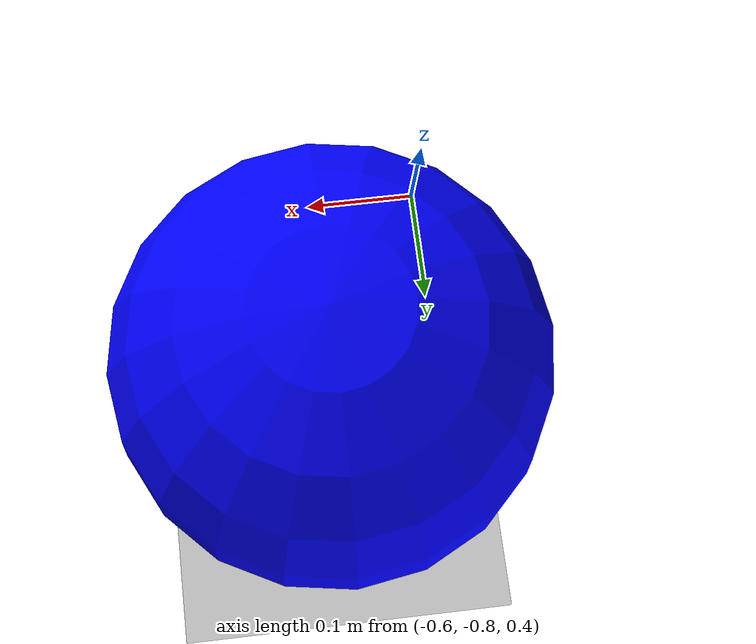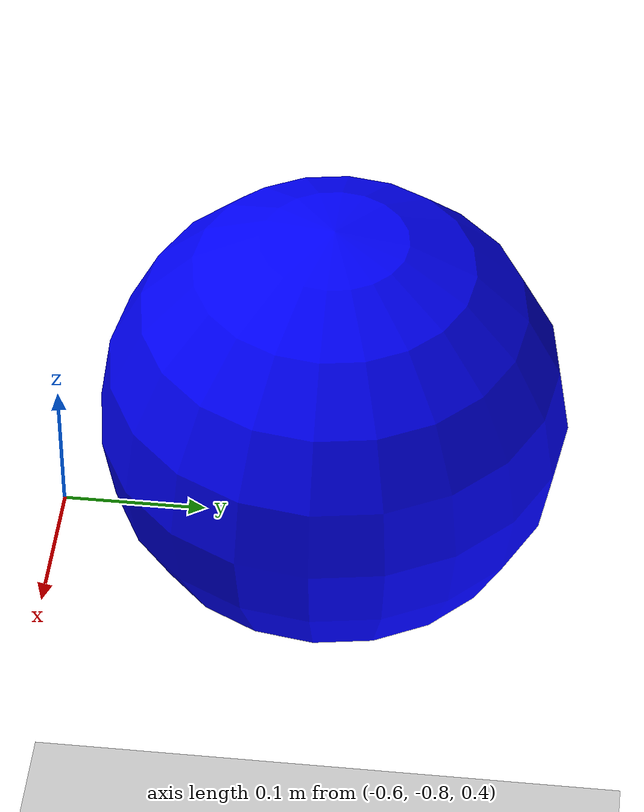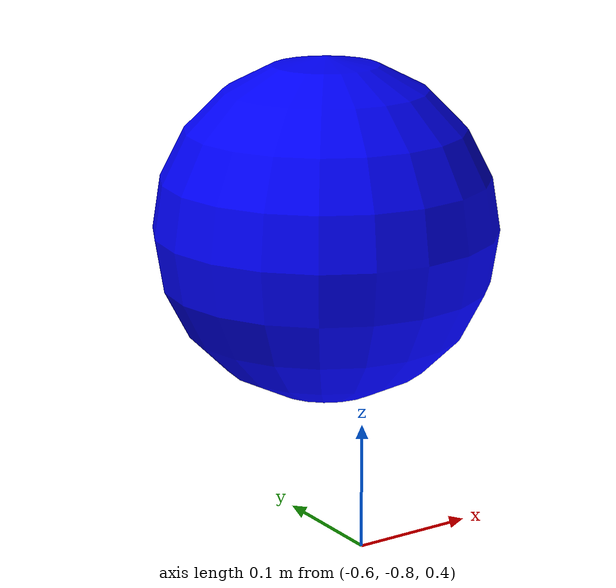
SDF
<?xml version="1.0" ?>
<sdf version="1.4">
  <!-- We use a custom world for the rrbot so that the camera angle is launched correctly -->

  <world name="default">
    <!-- Included light -->
    <include>
      <uri>https://fuel.gazebosim.org/1.0/OpenRobotics/models/Sun</uri>
    </include>

    <!-- Included model -->
    <include>
      <uri>https://fuel.gazebosim.org/1.0/OpenRobotics/models/Ground Plane</uri>
    </include>

    <include>
      <uri>
        model://spherical_object
      </uri>
      <name>spherical_object</name>
      <pose>-0.5 -0.6 0.6 0 0 0</pose>
    </include>

    <gravity>0 0 0</gravity>

    <!-- Focus camera on tall pendulum -->
    <gui fullscreen='0'>
      <camera name='user_camera'>
        <pose>4.927360 -4.376610 3.740080 0.000000 0.275643 2.356190</pose>
        <view_controller>orbit</view_controller>
      </camera>
    </gui>

    <!-- World control -->

  </world>
</sdf>

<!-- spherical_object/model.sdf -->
<sdf version='1.9'>
  <model name='spherical_object'>
    <static>true</static>
    <pose>-0.5 -0.6 0.6 0 0 0</pose>
    <link name='base'>
      <visual name='base_visual'>
        <geometry>
           <sphere>
            <radius>0.15</radius> <!-- Raggio della sfera: 15 cm -->
          </sphere>
        </geometry>
        <material>
           <diffuse>0 0 1 1</diffuse> <!-- Colore blu (RGB: 0, 0, 1) -->
           <specular>0.4 0.4 0.4 1</specular>
        </material>
      </visual>
    </link>
  </model>
</sdf>
